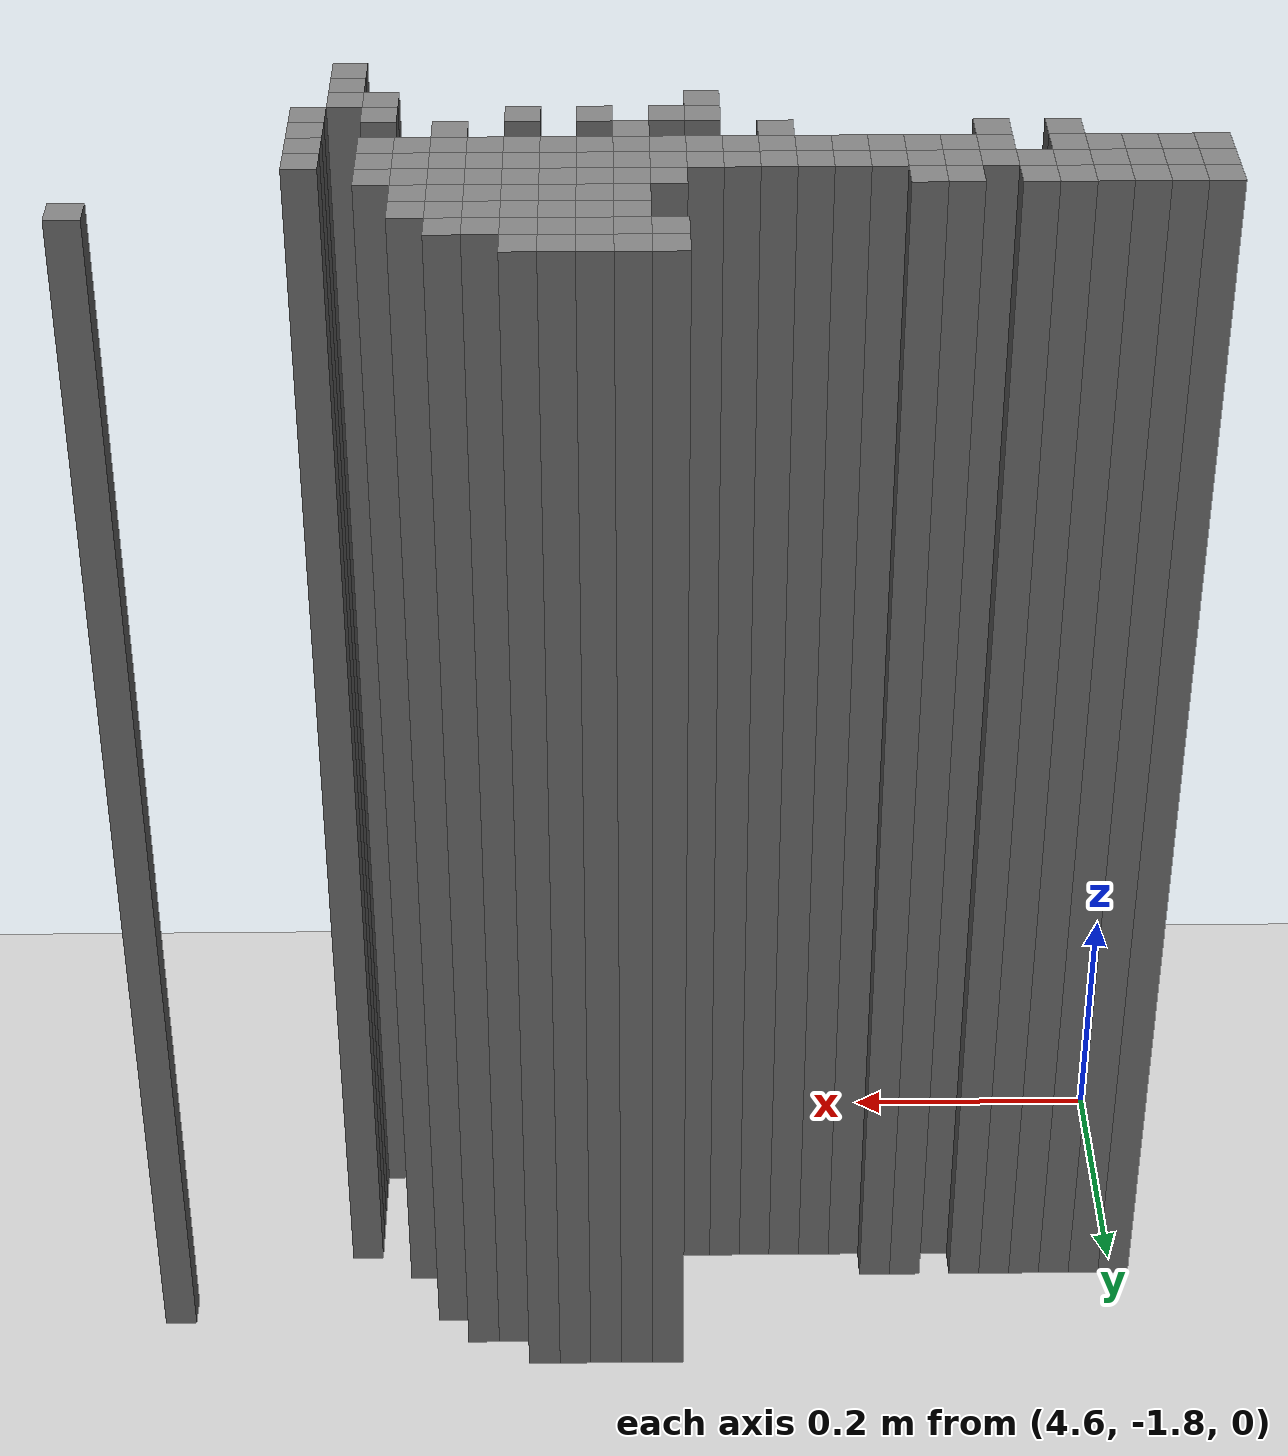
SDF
<sdf version="1.6">
 <world name="map_world">
  <include><uri>model://ground_plane</uri></include>
  <include><uri>model://sun</uri></include>
  <model name="obs_292_109">
   <static>true</static>
   <link name="link">
    <collision name="collision"><geometry><box><size>0.025 0.025 1.0</size></box></geometry></collision>
    <visual name="visual">
     <geometry><box><size>0.025 0.025 1.0</size></box></geometry>
     <material><ambient>0.5 0.5 0.5 1</ambient></material>
    </visual>
   </link>
   <pose>4.973765 -1.494071 0.5 0 0 0</pose>
  </model>
  <model name="obs_293_109">
   <static>true</static>
   <link name="link">
    <collision name="collision"><geometry><box><size>0.025 0.025 1.0</size></box></geometry></collision>
    <visual name="visual">
     <geometry><box><size>0.025 0.025 1.0</size></box></geometry>
     <material><ambient>0.5 0.5 0.5 1</ambient></material>
    </visual>
   </link>
   <pose>4.998765000000001 -1.494071 0.5 0 0 0</pose>
  </model>
  <model name="obs_294_109">
   <static>true</static>
   <link name="link">
    <collision name="collision"><geometry><box><size>0.025 0.025 1.0</size></box></geometry></collision>
    <visual name="visual">
     <geometry><box><size>0.025 0.025 1.0</size></box></geometry>
     <material><ambient>0.5 0.5 0.5 1</ambient></material>
    </visual>
   </link>
   <pose>5.023765000000001 -1.494071 0.5 0 0 0</pose>
  </model>
  <model name="obs_295_109">
   <static>true</static>
   <link name="link">
    <collision name="collision"><geometry><box><size>0.025 0.025 1.0</size></box></geometry></collision>
    <visual name="visual">
     <geometry><box><size>0.025 0.025 1.0</size></box></geometry>
     <material><ambient>0.5 0.5 0.5 1</ambient></material>
    </visual>
   </link>
   <pose>5.0487649999999995 -1.494071 0.5 0 0 0</pose>
  </model>
  <model name="obs_296_109">
   <static>true</static>
   <link name="link">
    <collision name="collision"><geometry><box><size>0.025 0.025 1.0</size></box></geometry></collision>
    <visual name="visual">
     <geometry><box><size>0.025 0.025 1.0</size></box></geometry>
     <material><ambient>0.5 0.5 0.5 1</ambient></material>
    </visual>
   </link>
   <pose>5.073765 -1.494071 0.5 0 0 0</pose>
  </model>
  <model name="obs_292_110">
   <static>true</static>
   <link name="link">
    <collision name="collision"><geometry><box><size>0.025 0.025 1.0</size></box></geometry></collision>
    <visual name="visual">
     <geometry><box><size>0.025 0.025 1.0</size></box></geometry>
     <material><ambient>0.5 0.5 0.5 1</ambient></material>
    </visual>
   </link>
   <pose>4.973765 -1.5190709999999998 0.5 0 0 0</pose>
  </model>
  <model name="obs_293_110">
   <static>true</static>
   <link name="link">
    <collision name="collision"><geometry><box><size>0.025 0.025 1.0</size></box></geometry></collision>
    <visual name="visual">
     <geometry><box><size>0.025 0.025 1.0</size></box></geometry>
     <material><ambient>0.5 0.5 0.5 1</ambient></material>
    </visual>
   </link>
   <pose>4.998765000000001 -1.5190709999999998 0.5 0 0 0</pose>
  </model>
  <model name="obs_294_110">
   <static>true</static>
   <link name="link">
    <collision name="collision"><geometry><box><size>0.025 0.025 1.0</size></box></geometry></collision>
    <visual name="visual">
     <geometry><box><size>0.025 0.025 1.0</size></box></geometry>
     <material><ambient>0.5 0.5 0.5 1</ambient></material>
    </visual>
   </link>
   <pose>5.023765000000001 -1.5190709999999998 0.5 0 0 0</pose>
  </model>
  <model name="obs_295_110">
   <static>true</static>
   <link name="link">
    <collision name="collision"><geometry><box><size>0.025 0.025 1.0</size></box></geometry></collision>
    <visual name="visual">
     <geometry><box><size>0.025 0.025 1.0</size></box></geometry>
     <material><ambient>0.5 0.5 0.5 1</ambient></material>
    </visual>
   </link>
   <pose>5.0487649999999995 -1.5190709999999998 0.5 0 0 0</pose>
  </model>
  <model name="obs_296_110">
   <static>true</static>
   <link name="link">
    <collision name="collision"><geometry><box><size>0.025 0.025 1.0</size></box></geometry></collision>
    <visual name="visual">
     <geometry><box><size>0.025 0.025 1.0</size></box></geometry>
     <material><ambient>0.5 0.5 0.5 1</ambient></material>
    </visual>
   </link>
   <pose>5.073765 -1.5190709999999998 0.5 0 0 0</pose>
  </model>
  <model name="obs_297_110">
   <static>true</static>
   <link name="link">
    <collision name="collision"><geometry><box><size>0.025 0.025 1.0</size></box></geometry></collision>
    <visual name="visual">
     <geometry><box><size>0.025 0.025 1.0</size></box></geometry>
     <material><ambient>0.5 0.5 0.5 1</ambient></material>
    </visual>
   </link>
   <pose>5.098765 -1.5190709999999998 0.5 0 0 0</pose>
  </model>
  <model name="obs_298_110">
   <static>true</static>
   <link name="link">
    <collision name="collision"><geometry><box><size>0.025 0.025 1.0</size></box></geometry></collision>
    <visual name="visual">
     <geometry><box><size>0.025 0.025 1.0</size></box></geometry>
     <material><ambient>0.5 0.5 0.5 1</ambient></material>
    </visual>
   </link>
   <pose>5.123765000000001 -1.5190709999999998 0.5 0 0 0</pose>
  </model>
  <model name="obs_293_111">
   <static>true</static>
   <link name="link">
    <collision name="collision"><geometry><box><size>0.025 0.025 1.0</size></box></geometry></collision>
    <visual name="visual">
     <geometry><box><size>0.025 0.025 1.0</size></box></geometry>
     <material><ambient>0.5 0.5 0.5 1</ambient></material>
    </visual>
   </link>
   <pose>4.998765000000001 -1.544071 0.5 0 0 0</pose>
  </model>
  <model name="obs_294_111">
   <static>true</static>
   <link name="link">
    <collision name="collision"><geometry><box><size>0.025 0.025 1.0</size></box></geometry></collision>
    <visual name="visual">
     <geometry><box><size>0.025 0.025 1.0</size></box></geometry>
     <material><ambient>0.5 0.5 0.5 1</ambient></material>
    </visual>
   </link>
   <pose>5.023765000000001 -1.544071 0.5 0 0 0</pose>
  </model>
  <model name="obs_295_111">
   <static>true</static>
   <link name="link">
    <collision name="collision"><geometry><box><size>0.025 0.025 1.0</size></box></geometry></collision>
    <visual name="visual">
     <geometry><box><size>0.025 0.025 1.0</size></box></geometry>
     <material><ambient>0.5 0.5 0.5 1</ambient></material>
    </visual>
   </link>
   <pose>5.0487649999999995 -1.544071 0.5 0 0 0</pose>
  </model>
  <model name="obs_296_111">
   <static>true</static>
   <link name="link">
    <collision name="collision"><geometry><box><size>0.025 0.025 1.0</size></box></geometry></collision>
    <visual name="visual">
     <geometry><box><size>0.025 0.025 1.0</size></box></geometry>
     <material><ambient>0.5 0.5 0.5 1</ambient></material>
    </visual>
   </link>
   <pose>5.073765 -1.544071 0.5 0 0 0</pose>
  </model>
  <model name="obs_297_111">
   <static>true</static>
   <link name="link">
    <collision name="collision"><geometry><box><size>0.025 0.025 1.0</size></box></geometry></collision>
    <visual name="visual">
     <geometry><box><size>0.025 0.025 1.0</size></box></geometry>
     <material><ambient>0.5 0.5 0.5 1</ambient></material>
    </visual>
   </link>
   <pose>5.098765 -1.544071 0.5 0 0 0</pose>
  </model>
  <model name="obs_298_111">
   <static>true</static>
   <link name="link">
    <collision name="collision"><geometry><box><size>0.025 0.025 1.0</size></box></geometry></collision>
    <visual name="visual">
     <geometry><box><size>0.025 0.025 1.0</size></box></geometry>
     <material><ambient>0.5 0.5 0.5 1</ambient></material>
    </visual>
   </link>
   <pose>5.123765000000001 -1.544071 0.5 0 0 0</pose>
  </model>
  <model name="obs_299_111">
   <static>true</static>
   <link name="link">
    <collision name="collision"><geometry><box><size>0.025 0.025 1.0</size></box></geometry></collision>
    <visual name="visual">
     <geometry><box><size>0.025 0.025 1.0</size></box></geometry>
     <material><ambient>0.5 0.5 0.5 1</ambient></material>
    </visual>
   </link>
   <pose>5.148765000000001 -1.544071 0.5 0 0 0</pose>
  </model>
  <model name="obs_308_111">
   <static>true</static>
   <link name="link">
    <collision name="collision"><geometry><box><size>0.025 0.025 1.0</size></box></geometry></collision>
    <visual name="visual">
     <geometry><box><size>0.025 0.025 1.0</size></box></geometry>
     <material><ambient>0.5 0.5 0.5 1</ambient></material>
    </visual>
   </link>
   <pose>5.373765000000001 -1.544071 0.5 0 0 0</pose>
  </model>
  <model name="obs_293_112">
   <static>true</static>
   <link name="link">
    <collision name="collision"><geometry><box><size>0.025 0.025 1.0</size></box></geometry></collision>
    <visual name="visual">
     <geometry><box><size>0.025 0.025 1.0</size></box></geometry>
     <material><ambient>0.5 0.5 0.5 1</ambient></material>
    </visual>
   </link>
   <pose>4.998765000000001 -1.5690709999999999 0.5 0 0 0</pose>
  </model>
  <model name="obs_294_112">
   <static>true</static>
   <link name="link">
    <collision name="collision"><geometry><box><size>0.025 0.025 1.0</size></box></geometry></collision>
    <visual name="visual">
     <geometry><box><size>0.025 0.025 1.0</size></box></geometry>
     <material><ambient>0.5 0.5 0.5 1</ambient></material>
    </visual>
   </link>
   <pose>5.023765000000001 -1.5690709999999999 0.5 0 0 0</pose>
  </model>
  <model name="obs_295_112">
   <static>true</static>
   <link name="link">
    <collision name="collision"><geometry><box><size>0.025 0.025 1.0</size></box></geometry></collision>
    <visual name="visual">
     <geometry><box><size>0.025 0.025 1.0</size></box></geometry>
     <material><ambient>0.5 0.5 0.5 1</ambient></material>
    </visual>
   </link>
   <pose>5.0487649999999995 -1.5690709999999999 0.5 0 0 0</pose>
  </model>
  <model name="obs_296_112">
   <static>true</static>
   <link name="link">
    <collision name="collision"><geometry><box><size>0.025 0.025 1.0</size></box></geometry></collision>
    <visual name="visual">
     <geometry><box><size>0.025 0.025 1.0</size></box></geometry>
     <material><ambient>0.5 0.5 0.5 1</ambient></material>
    </visual>
   </link>
   <pose>5.073765 -1.5690709999999999 0.5 0 0 0</pose>
  </model>
  <model name="obs_297_112">
   <static>true</static>
   <link name="link">
    <collision name="collision"><geometry><box><size>0.025 0.025 1.0</size></box></geometry></collision>
    <visual name="visual">
     <geometry><box><size>0.025 0.025 1.0</size></box></geometry>
     <material><ambient>0.5 0.5 0.5 1</ambient></material>
    </visual>
   </link>
   <pose>5.098765 -1.5690709999999999 0.5 0 0 0</pose>
  </model>
  <model name="obs_298_112">
   <static>true</static>
   <link name="link">
    <collision name="collision"><geometry><box><size>0.025 0.025 1.0</size></box></geometry></collision>
    <visual name="visual">
     <geometry><box><size>0.025 0.025 1.0</size></box></geometry>
     <material><ambient>0.5 0.5 0.5 1</ambient></material>
    </visual>
   </link>
   <pose>5.123765000000001 -1.5690709999999999 0.5 0 0 0</pose>
  </model>
  <model name="obs_299_112">
   <static>true</static>
   <link name="link">
    <collision name="collision"><geometry><box><size>0.025 0.025 1.0</size></box></geometry></collision>
    <visual name="visual">
     <geometry><box><size>0.025 0.025 1.0</size></box></geometry>
     <material><ambient>0.5 0.5 0.5 1</ambient></material>
    </visual>
   </link>
   <pose>5.148765000000001 -1.5690709999999999 0.5 0 0 0</pose>
  </model>
  <model name="obs_277_113">
   <static>true</static>
   <link name="link">
    <collision name="collision"><geometry><box><size>0.025 0.025 1.0</size></box></geometry></collision>
    <visual name="visual">
     <geometry><box><size>0.025 0.025 1.0</size></box></geometry>
     <material><ambient>0.5 0.5 0.5 1</ambient></material>
    </visual>
   </link>
   <pose>4.598765 -1.594071 0.5 0 0 0</pose>
  </model>
  <model name="obs_278_113">
   <static>true</static>
   <link name="link">
    <collision name="collision"><geometry><box><size>0.025 0.025 1.0</size></box></geometry></collision>
    <visual name="visual">
     <geometry><box><size>0.025 0.025 1.0</size></box></geometry>
     <material><ambient>0.5 0.5 0.5 1</ambient></material>
    </visual>
   </link>
   <pose>4.623765000000001 -1.594071 0.5 0 0 0</pose>
  </model>
  <model name="obs_279_113">
   <static>true</static>
   <link name="link">
    <collision name="collision"><geometry><box><size>0.025 0.025 1.0</size></box></geometry></collision>
    <visual name="visual">
     <geometry><box><size>0.025 0.025 1.0</size></box></geometry>
     <material><ambient>0.5 0.5 0.5 1</ambient></material>
    </visual>
   </link>
   <pose>4.648765000000001 -1.594071 0.5 0 0 0</pose>
  </model>
  <model name="obs_280_113">
   <static>true</static>
   <link name="link">
    <collision name="collision"><geometry><box><size>0.025 0.025 1.0</size></box></geometry></collision>
    <visual name="visual">
     <geometry><box><size>0.025 0.025 1.0</size></box></geometry>
     <material><ambient>0.5 0.5 0.5 1</ambient></material>
    </visual>
   </link>
   <pose>4.6737649999999995 -1.594071 0.5 0 0 0</pose>
  </model>
  <model name="obs_281_113">
   <static>true</static>
   <link name="link">
    <collision name="collision"><geometry><box><size>0.025 0.025 1.0</size></box></geometry></collision>
    <visual name="visual">
     <geometry><box><size>0.025 0.025 1.0</size></box></geometry>
     <material><ambient>0.5 0.5 0.5 1</ambient></material>
    </visual>
   </link>
   <pose>4.698765 -1.594071 0.5 0 0 0</pose>
  </model>
  <model name="obs_282_113">
   <static>true</static>
   <link name="link">
    <collision name="collision"><geometry><box><size>0.025 0.025 1.0</size></box></geometry></collision>
    <visual name="visual">
     <geometry><box><size>0.025 0.025 1.0</size></box></geometry>
     <material><ambient>0.5 0.5 0.5 1</ambient></material>
    </visual>
   </link>
   <pose>4.723765 -1.594071 0.5 0 0 0</pose>
  </model>
  <model name="obs_284_113">
   <static>true</static>
   <link name="link">
    <collision name="collision"><geometry><box><size>0.025 0.025 1.0</size></box></geometry></collision>
    <visual name="visual">
     <geometry><box><size>0.025 0.025 1.0</size></box></geometry>
     <material><ambient>0.5 0.5 0.5 1</ambient></material>
    </visual>
   </link>
   <pose>4.773765000000001 -1.594071 0.5 0 0 0</pose>
  </model>
  <model name="obs_285_113">
   <static>true</static>
   <link name="link">
    <collision name="collision"><geometry><box><size>0.025 0.025 1.0</size></box></geometry></collision>
    <visual name="visual">
     <geometry><box><size>0.025 0.025 1.0</size></box></geometry>
     <material><ambient>0.5 0.5 0.5 1</ambient></material>
    </visual>
   </link>
   <pose>4.7987649999999995 -1.594071 0.5 0 0 0</pose>
  </model>
  <model name="obs_292_113">
   <static>true</static>
   <link name="link">
    <collision name="collision"><geometry><box><size>0.025 0.025 1.0</size></box></geometry></collision>
    <visual name="visual">
     <geometry><box><size>0.025 0.025 1.0</size></box></geometry>
     <material><ambient>0.5 0.5 0.5 1</ambient></material>
    </visual>
   </link>
   <pose>4.973765 -1.594071 0.5 0 0 0</pose>
  </model>
  <model name="obs_293_113">
   <static>true</static>
   <link name="link">
    <collision name="collision"><geometry><box><size>0.025 0.025 1.0</size></box></geometry></collision>
    <visual name="visual">
     <geometry><box><size>0.025 0.025 1.0</size></box></geometry>
     <material><ambient>0.5 0.5 0.5 1</ambient></material>
    </visual>
   </link>
   <pose>4.998765000000001 -1.594071 0.5 0 0 0</pose>
  </model>
  <model name="obs_294_113">
   <static>true</static>
   <link name="link">
    <collision name="collision"><geometry><box><size>0.025 0.025 1.0</size></box></geometry></collision>
    <visual name="visual">
     <geometry><box><size>0.025 0.025 1.0</size></box></geometry>
     <material><ambient>0.5 0.5 0.5 1</ambient></material>
    </visual>
   </link>
   <pose>5.023765000000001 -1.594071 0.5 0 0 0</pose>
  </model>
  <model name="obs_295_113">
   <static>true</static>
   <link name="link">
    <collision name="collision"><geometry><box><size>0.025 0.025 1.0</size></box></geometry></collision>
    <visual name="visual">
     <geometry><box><size>0.025 0.025 1.0</size></box></geometry>
     <material><ambient>0.5 0.5 0.5 1</ambient></material>
    </visual>
   </link>
   <pose>5.0487649999999995 -1.594071 0.5 0 0 0</pose>
  </model>
  <model name="obs_296_113">
   <static>true</static>
   <link name="link">
    <collision name="collision"><geometry><box><size>0.025 0.025 1.0</size></box></geometry></collision>
    <visual name="visual">
     <geometry><box><size>0.025 0.025 1.0</size></box></geometry>
     <material><ambient>0.5 0.5 0.5 1</ambient></material>
    </visual>
   </link>
   <pose>5.073765 -1.594071 0.5 0 0 0</pose>
  </model>
  <model name="obs_297_113">
   <static>true</static>
   <link name="link">
    <collision name="collision"><geometry><box><size>0.025 0.025 1.0</size></box></geometry></collision>
    <visual name="visual">
     <geometry><box><size>0.025 0.025 1.0</size></box></geometry>
     <material><ambient>0.5 0.5 0.5 1</ambient></material>
    </visual>
   </link>
   <pose>5.098765 -1.594071 0.5 0 0 0</pose>
  </model>
  <model name="obs_298_113">
   <static>true</static>
   <link name="link">
    <collision name="collision"><geometry><box><size>0.025 0.025 1.0</size></box></geometry></collision>
    <visual name="visual">
     <geometry><box><size>0.025 0.025 1.0</size></box></geometry>
     <material><ambient>0.5 0.5 0.5 1</ambient></material>
    </visual>
   </link>
   <pose>5.123765000000001 -1.594071 0.5 0 0 0</pose>
  </model>
  <model name="obs_299_113">
   <static>true</static>
   <link name="link">
    <collision name="collision"><geometry><box><size>0.025 0.025 1.0</size></box></geometry></collision>
    <visual name="visual">
     <geometry><box><size>0.025 0.025 1.0</size></box></geometry>
     <material><ambient>0.5 0.5 0.5 1</ambient></material>
    </visual>
   </link>
   <pose>5.148765000000001 -1.594071 0.5 0 0 0</pose>
  </model>
  <model name="obs_300_113">
   <static>true</static>
   <link name="link">
    <collision name="collision"><geometry><box><size>0.025 0.025 1.0</size></box></geometry></collision>
    <visual name="visual">
     <geometry><box><size>0.025 0.025 1.0</size></box></geometry>
     <material><ambient>0.5 0.5 0.5 1</ambient></material>
    </visual>
   </link>
   <pose>5.1737649999999995 -1.594071 0.5 0 0 0</pose>
  </model>
  <model name="obs_277_114">
   <static>true</static>
   <link name="link">
    <collision name="collision"><geometry><box><size>0.025 0.025 1.0</size></box></geometry></collision>
    <visual name="visual">
     <geometry><box><size>0.025 0.025 1.0</size></box></geometry>
     <material><ambient>0.5 0.5 0.5 1</ambient></material>
    </visual>
   </link>
   <pose>4.598765 -1.619071 0.5 0 0 0</pose>
  </model>
  <model name="obs_278_114">
   <static>true</static>
   <link name="link">
    <collision name="collision"><geometry><box><size>0.025 0.025 1.0</size></box></geometry></collision>
    <visual name="visual">
     <geometry><box><size>0.025 0.025 1.0</size></box></geometry>
     <material><ambient>0.5 0.5 0.5 1</ambient></material>
    </visual>
   </link>
   <pose>4.623765000000001 -1.619071 0.5 0 0 0</pose>
  </model>
  <model name="obs_279_114">
   <static>true</static>
   <link name="link">
    <collision name="collision"><geometry><box><size>0.025 0.025 1.0</size></box></geometry></collision>
    <visual name="visual">
     <geometry><box><size>0.025 0.025 1.0</size></box></geometry>
     <material><ambient>0.5 0.5 0.5 1</ambient></material>
    </visual>
   </link>
   <pose>4.648765000000001 -1.619071 0.5 0 0 0</pose>
  </model>
  <model name="obs_280_114">
   <static>true</static>
   <link name="link">
    <collision name="collision"><geometry><box><size>0.025 0.025 1.0</size></box></geometry></collision>
    <visual name="visual">
     <geometry><box><size>0.025 0.025 1.0</size></box></geometry>
     <material><ambient>0.5 0.5 0.5 1</ambient></material>
    </visual>
   </link>
   <pose>4.6737649999999995 -1.619071 0.5 0 0 0</pose>
  </model>
  <model name="obs_281_114">
   <static>true</static>
   <link name="link">
    <collision name="collision"><geometry><box><size>0.025 0.025 1.0</size></box></geometry></collision>
    <visual name="visual">
     <geometry><box><size>0.025 0.025 1.0</size></box></geometry>
     <material><ambient>0.5 0.5 0.5 1</ambient></material>
    </visual>
   </link>
   <pose>4.698765 -1.619071 0.5 0 0 0</pose>
  </model>
  <model name="obs_282_114">
   <static>true</static>
   <link name="link">
    <collision name="collision"><geometry><box><size>0.025 0.025 1.0</size></box></geometry></collision>
    <visual name="visual">
     <geometry><box><size>0.025 0.025 1.0</size></box></geometry>
     <material><ambient>0.5 0.5 0.5 1</ambient></material>
    </visual>
   </link>
   <pose>4.723765 -1.619071 0.5 0 0 0</pose>
  </model>
  <model name="obs_283_114">
   <static>true</static>
   <link name="link">
    <collision name="collision"><geometry><box><size>0.025 0.025 1.0</size></box></geometry></collision>
    <visual name="visual">
     <geometry><box><size>0.025 0.025 1.0</size></box></geometry>
     <material><ambient>0.5 0.5 0.5 1</ambient></material>
    </visual>
   </link>
   <pose>4.748765000000001 -1.619071 0.5 0 0 0</pose>
  </model>
  <model name="obs_284_114">
   <static>true</static>
   <link name="link">
    <collision name="collision"><geometry><box><size>0.025 0.025 1.0</size></box></geometry></collision>
    <visual name="visual">
     <geometry><box><size>0.025 0.025 1.0</size></box></geometry>
     <material><ambient>0.5 0.5 0.5 1</ambient></material>
    </visual>
   </link>
   <pose>4.773765000000001 -1.619071 0.5 0 0 0</pose>
  </model>
  <model name="obs_285_114">
   <static>true</static>
   <link name="link">
    <collision name="collision"><geometry><box><size>0.025 0.025 1.0</size></box></geometry></collision>
    <visual name="visual">
     <geometry><box><size>0.025 0.025 1.0</size></box></geometry>
     <material><ambient>0.5 0.5 0.5 1</ambient></material>
    </visual>
   </link>
   <pose>4.7987649999999995 -1.619071 0.5 0 0 0</pose>
  </model>
  <model name="obs_286_114">
   <static>true</static>
   <link name="link">
    <collision name="collision"><geometry><box><size>0.025 0.025 1.0</size></box></geometry></collision>
    <visual name="visual">
     <geometry><box><size>0.025 0.025 1.0</size></box></geometry>
     <material><ambient>0.5 0.5 0.5 1</ambient></material>
    </visual>
   </link>
   <pose>4.823765 -1.619071 0.5 0 0 0</pose>
  </model>
  <model name="obs_287_114">
   <static>true</static>
   <link name="link">
    <collision name="collision"><geometry><box><size>0.025 0.025 1.0</size></box></geometry></collision>
    <visual name="visual">
     <geometry><box><size>0.025 0.025 1.0</size></box></geometry>
     <material><ambient>0.5 0.5 0.5 1</ambient></material>
    </visual>
   </link>
   <pose>4.848765 -1.619071 0.5 0 0 0</pose>
  </model>
  <model name="obs_288_114">
   <static>true</static>
   <link name="link">
    <collision name="collision"><geometry><box><size>0.025 0.025 1.0</size></box></geometry></collision>
    <visual name="visual">
     <geometry><box><size>0.025 0.025 1.0</size></box></geometry>
     <material><ambient>0.5 0.5 0.5 1</ambient></material>
    </visual>
   </link>
   <pose>4.873765000000001 -1.619071 0.5 0 0 0</pose>
  </model>
  <model name="obs_289_114">
   <static>true</static>
   <link name="link">
    <collision name="collision"><geometry><box><size>0.025 0.025 1.0</size></box></geometry></collision>
    <visual name="visual">
     <geometry><box><size>0.025 0.025 1.0</size></box></geometry>
     <material><ambient>0.5 0.5 0.5 1</ambient></material>
    </visual>
   </link>
   <pose>4.898765000000001 -1.619071 0.5 0 0 0</pose>
  </model>
  <model name="obs_290_114">
   <static>true</static>
   <link name="link">
    <collision name="collision"><geometry><box><size>0.025 0.025 1.0</size></box></geometry></collision>
    <visual name="visual">
     <geometry><box><size>0.025 0.025 1.0</size></box></geometry>
     <material><ambient>0.5 0.5 0.5 1</ambient></material>
    </visual>
   </link>
   <pose>4.9237649999999995 -1.619071 0.5 0 0 0</pose>
  </model>
  <model name="obs_291_114">
   <static>true</static>
   <link name="link">
    <collision name="collision"><geometry><box><size>0.025 0.025 1.0</size></box></geometry></collision>
    <visual name="visual">
     <geometry><box><size>0.025 0.025 1.0</size></box></geometry>
     <material><ambient>0.5 0.5 0.5 1</ambient></material>
    </visual>
   </link>
   <pose>4.948765 -1.619071 0.5 0 0 0</pose>
  </model>
  <model name="obs_292_114">
   <static>true</static>
   <link name="link">
    <collision name="collision"><geometry><box><size>0.025 0.025 1.0</size></box></geometry></collision>
    <visual name="visual">
     <geometry><box><size>0.025 0.025 1.0</size></box></geometry>
     <material><ambient>0.5 0.5 0.5 1</ambient></material>
    </visual>
   </link>
   <pose>4.973765 -1.619071 0.5 0 0 0</pose>
  </model>
  <model name="obs_293_114">
   <static>true</static>
   <link name="link">
    <collision name="collision"><geometry><box><size>0.025 0.025 1.0</size></box></geometry></collision>
    <visual name="visual">
     <geometry><box><size>0.025 0.025 1.0</size></box></geometry>
     <material><ambient>0.5 0.5 0.5 1</ambient></material>
    </visual>
   </link>
   <pose>4.998765000000001 -1.619071 0.5 0 0 0</pose>
  </model>
  <model name="obs_294_114">
   <static>true</static>
   <link name="link">
    <collision name="collision"><geometry><box><size>0.025 0.025 1.0</size></box></geometry></collision>
    <visual name="visual">
     <geometry><box><size>0.025 0.025 1.0</size></box></geometry>
     <material><ambient>0.5 0.5 0.5 1</ambient></material>
    </visual>
   </link>
   <pose>5.023765000000001 -1.619071 0.5 0 0 0</pose>
  </model>
  <model name="obs_295_114">
   <static>true</static>
   <link name="link">
    <collision name="collision"><geometry><box><size>0.025 0.025 1.0</size></box></geometry></collision>
    <visual name="visual">
     <geometry><box><size>0.025 0.025 1.0</size></box></geometry>
     <material><ambient>0.5 0.5 0.5 1</ambient></material>
    </visual>
   </link>
   <pose>5.0487649999999995 -1.619071 0.5 0 0 0</pose>
  </model>
  <model name="obs_296_114">
   <static>true</static>
   <link name="link">
    <collision name="collision"><geometry><box><size>0.025 0.025 1.0</size></box></geometry></collision>
    <visual name="visual">
     <geometry><box><size>0.025 0.025 1.0</size></box></geometry>
     <material><ambient>0.5 0.5 0.5 1</ambient></material>
    </visual>
   </link>
   <pose>5.073765 -1.619071 0.5 0 0 0</pose>
  </model>
  <model name="obs_297_114">
   <static>true</static>
   <link name="link">
    <collision name="collision"><geometry><box><size>0.025 0.025 1.0</size></box></geometry></collision>
    <visual name="visual">
     <geometry><box><size>0.025 0.025 1.0</size></box></geometry>
     <material><ambient>0.5 0.5 0.5 1</ambient></material>
    </visual>
   </link>
   <pose>5.098765 -1.619071 0.5 0 0 0</pose>
  </model>
  <model name="obs_298_114">
   <static>true</static>
   <link name="link">
    <collision name="collision"><geometry><box><size>0.025 0.025 1.0</size></box></geometry></collision>
    <visual name="visual">
     <geometry><box><size>0.025 0.025 1.0</size></box></geometry>
     <material><ambient>0.5 0.5 0.5 1</ambient></material>
    </visual>
   </link>
   <pose>5.123765000000001 -1.619071 0.5 0 0 0</pose>
  </model>
  <model name="obs_299_114">
   <static>true</static>
   <link name="link">
    <collision name="collision"><geometry><box><size>0.025 0.025 1.0</size></box></geometry></collision>
    <visual name="visual">
     <geometry><box><size>0.025 0.025 1.0</size></box></geometry>
     <material><ambient>0.5 0.5 0.5 1</ambient></material>
    </visual>
   </link>
   <pose>5.148765000000001 -1.619071 0.5 0 0 0</pose>
  </model>
  <model name="obs_300_114">
   <static>true</static>
   <link name="link">
    <collision name="collision"><geometry><box><size>0.025 0.025 1.0</size></box></geometry></collision>
    <visual name="visual">
     <geometry><box><size>0.025 0.025 1.0</size></box></geometry>
     <material><ambient>0.5 0.5 0.5 1</ambient></material>
    </visual>
   </link>
   <pose>5.1737649999999995 -1.619071 0.5 0 0 0</pose>
  </model>
  <model name="obs_302_114">
   <static>true</static>
   <link name="link">
    <collision name="collision"><geometry><box><size>0.025 0.025 1.0</size></box></geometry></collision>
    <visual name="visual">
     <geometry><box><size>0.025 0.025 1.0</size></box></geometry>
     <material><ambient>0.5 0.5 0.5 1</ambient></material>
    </visual>
   </link>
   <pose>5.223765 -1.619071 0.5 0 0 0</pose>
  </model>
  <model name="obs_277_115">
   <static>true</static>
   <link name="link">
    <collision name="collision"><geometry><box><size>0.025 0.025 1.0</size></box></geometry></collision>
    <visual name="visual">
     <geometry><box><size>0.025 0.025 1.0</size></box></geometry>
     <material><ambient>0.5 0.5 0.5 1</ambient></material>
    </visual>
   </link>
   <pose>4.598765 -1.6440709999999998 0.5 0 0 0</pose>
  </model>
  <model name="obs_278_115">
   <static>true</static>
   <link name="link">
    <collision name="collision"><geometry><box><size>0.025 0.025 1.0</size></box></geometry></collision>
    <visual name="visual">
     <geometry><box><size>0.025 0.025 1.0</size></box></geometry>
     <material><ambient>0.5 0.5 0.5 1</ambient></material>
    </visual>
   </link>
   <pose>4.623765000000001 -1.6440709999999998 0.5 0 0 0</pose>
  </model>
  <model name="obs_279_115">
   <static>true</static>
   <link name="link">
    <collision name="collision"><geometry><box><size>0.025 0.025 1.0</size></box></geometry></collision>
    <visual name="visual">
     <geometry><box><size>0.025 0.025 1.0</size></box></geometry>
     <material><ambient>0.5 0.5 0.5 1</ambient></material>
    </visual>
   </link>
   <pose>4.648765000000001 -1.6440709999999998 0.5 0 0 0</pose>
  </model>
  <model name="obs_280_115">
   <static>true</static>
   <link name="link">
    <collision name="collision"><geometry><box><size>0.025 0.025 1.0</size></box></geometry></collision>
    <visual name="visual">
     <geometry><box><size>0.025 0.025 1.0</size></box></geometry>
     <material><ambient>0.5 0.5 0.5 1</ambient></material>
    </visual>
   </link>
   <pose>4.6737649999999995 -1.6440709999999998 0.5 0 0 0</pose>
  </model>
  <model name="obs_281_115">
   <static>true</static>
   <link name="link">
    <collision name="collision"><geometry><box><size>0.025 0.025 1.0</size></box></geometry></collision>
    <visual name="visual">
     <geometry><box><size>0.025 0.025 1.0</size></box></geometry>
     <material><ambient>0.5 0.5 0.5 1</ambient></material>
    </visual>
   </link>
   <pose>4.698765 -1.6440709999999998 0.5 0 0 0</pose>
  </model>
  <model name="obs_283_115">
   <static>true</static>
   <link name="link">
    <collision name="collision"><geometry><box><size>0.025 0.025 1.0</size></box></geometry></collision>
    <visual name="visual">
     <geometry><box><size>0.025 0.025 1.0</size></box></geometry>
     <material><ambient>0.5 0.5 0.5 1</ambient></material>
    </visual>
   </link>
   <pose>4.748765000000001 -1.6440709999999998 0.5 0 0 0</pose>
  </model>
  <model name="obs_284_115">
   <static>true</static>
   <link name="link">
    <collision name="collision"><geometry><box><size>0.025 0.025 1.0</size></box></geometry></collision>
    <visual name="visual">
     <geometry><box><size>0.025 0.025 1.0</size></box></geometry>
     <material><ambient>0.5 0.5 0.5 1</ambient></material>
    </visual>
   </link>
   <pose>4.773765000000001 -1.6440709999999998 0.5 0 0 0</pose>
  </model>
  <model name="obs_285_115">
   <static>true</static>
   <link name="link">
    <collision name="collision"><geometry><box><size>0.025 0.025 1.0</size></box></geometry></collision>
    <visual name="visual">
     <geometry><box><size>0.025 0.025 1.0</size></box></geometry>
     <material><ambient>0.5 0.5 0.5 1</ambient></material>
    </visual>
   </link>
   <pose>4.7987649999999995 -1.6440709999999998 0.5 0 0 0</pose>
  </model>
  <model name="obs_286_115">
   <static>true</static>
   <link name="link">
    <collision name="collision"><geometry><box><size>0.025 0.025 1.0</size></box></geometry></collision>
    <visual name="visual">
     <geometry><box><size>0.025 0.025 1.0</size></box></geometry>
     <material><ambient>0.5 0.5 0.5 1</ambient></material>
    </visual>
   </link>
   <pose>4.823765 -1.6440709999999998 0.5 0 0 0</pose>
  </model>
  <model name="obs_287_115">
   <static>true</static>
   <link name="link">
    <collision name="collision"><geometry><box><size>0.025 0.025 1.0</size></box></geometry></collision>
    <visual name="visual">
     <geometry><box><size>0.025 0.025 1.0</size></box></geometry>
     <material><ambient>0.5 0.5 0.5 1</ambient></material>
    </visual>
   </link>
   <pose>4.848765 -1.6440709999999998 0.5 0 0 0</pose>
  </model>
  <model name="obs_288_115">
   <static>true</static>
   <link name="link">
    <collision name="collision"><geometry><box><size>0.025 0.025 1.0</size></box></geometry></collision>
    <visual name="visual">
     <geometry><box><size>0.025 0.025 1.0</size></box></geometry>
     <material><ambient>0.5 0.5 0.5 1</ambient></material>
    </visual>
   </link>
   <pose>4.873765000000001 -1.6440709999999998 0.5 0 0 0</pose>
  </model>
  <model name="obs_289_115">
   <static>true</static>
   <link name="link">
    <collision name="collision"><geometry><box><size>0.025 0.025 1.0</size></box></geometry></collision>
    <visual name="visual">
     <geometry><box><size>0.025 0.025 1.0</size></box></geometry>
     <material><ambient>0.5 0.5 0.5 1</ambient></material>
    </visual>
   </link>
   <pose>4.898765000000001 -1.6440709999999998 0.5 0 0 0</pose>
  </model>
  <model name="obs_290_115">
   <static>true</static>
   <link name="link">
    <collision name="collision"><geometry><box><size>0.025 0.025 1.0</size></box></geometry></collision>
    <visual name="visual">
     <geometry><box><size>0.025 0.025 1.0</size></box></geometry>
     <material><ambient>0.5 0.5 0.5 1</ambient></material>
    </visual>
   </link>
   <pose>4.9237649999999995 -1.6440709999999998 0.5 0 0 0</pose>
  </model>
  <model name="obs_291_115">
   <static>true</static>
   <link name="link">
    <collision name="collision"><geometry><box><size>0.025 0.025 1.0</size></box></geometry></collision>
    <visual name="visual">
     <geometry><box><size>0.025 0.025 1.0</size></box></geometry>
     <material><ambient>0.5 0.5 0.5 1</ambient></material>
    </visual>
   </link>
   <pose>4.948765 -1.6440709999999998 0.5 0 0 0</pose>
  </model>
  <model name="obs_292_115">
   <static>true</static>
   <link name="link">
    <collision name="collision"><geometry><box><size>0.025 0.025 1.0</size></box></geometry></collision>
    <visual name="visual">
     <geometry><box><size>0.025 0.025 1.0</size></box></geometry>
     <material><ambient>0.5 0.5 0.5 1</ambient></material>
    </visual>
   </link>
   <pose>4.973765 -1.6440709999999998 0.5 0 0 0</pose>
  </model>
  <model name="obs_293_115">
   <static>true</static>
   <link name="link">
    <collision name="collision"><geometry><box><size>0.025 0.025 1.0</size></box></geometry></collision>
    <visual name="visual">
     <geometry><box><size>0.025 0.025 1.0</size></box></geometry>
     <material><ambient>0.5 0.5 0.5 1</ambient></material>
    </visual>
   </link>
   <pose>4.998765000000001 -1.6440709999999998 0.5 0 0 0</pose>
  </model>
  <model name="obs_294_115">
   <static>true</static>
   <link name="link">
    <collision name="collision"><geometry><box><size>0.025 0.025 1.0</size></box></geometry></collision>
    <visual name="visual">
     <geometry><box><size>0.025 0.025 1.0</size></box></geometry>
     <material><ambient>0.5 0.5 0.5 1</ambient></material>
    </visual>
   </link>
   <pose>5.023765000000001 -1.6440709999999998 0.5 0 0 0</pose>
  </model>
  <model name="obs_295_115">
   <static>true</static>
   <link name="link">
    <collision name="collision"><geometry><box><size>0.025 0.025 1.0</size></box></geometry></collision>
    <visual name="visual">
     <geometry><box><size>0.025 0.025 1.0</size></box></geometry>
     <material><ambient>0.5 0.5 0.5 1</ambient></material>
    </visual>
   </link>
   <pose>5.0487649999999995 -1.6440709999999998 0.5 0 0 0</pose>
  </model>
  <model name="obs_296_115">
   <static>true</static>
   <link name="link">
    <collision name="collision"><geometry><box><size>0.025 0.025 1.0</size></box></geometry></collision>
    <visual name="visual">
     <geometry><box><size>0.025 0.025 1.0</size></box></geometry>
     <material><ambient>0.5 0.5 0.5 1</ambient></material>
    </visual>
   </link>
   <pose>5.073765 -1.6440709999999998 0.5 0 0 0</pose>
  </model>
  <model name="obs_297_115">
   <static>true</static>
   <link name="link">
    <collision name="collision"><geometry><box><size>0.025 0.025 1.0</size></box></geometry></collision>
    <visual name="visual">
     <geometry><box><size>0.025 0.025 1.0</size></box></geometry>
     <material><ambient>0.5 0.5 0.5 1</ambient></material>
    </visual>
   </link>
   <pose>5.098765 -1.6440709999999998 0.5 0 0 0</pose>
  </model>
  <model name="obs_298_115">
   <static>true</static>
   <link name="link">
    <collision name="collision"><geometry><box><size>0.025 0.025 1.0</size></box></geometry></collision>
    <visual name="visual">
     <geometry><box><size>0.025 0.025 1.0</size></box></geometry>
     <material><ambient>0.5 0.5 0.5 1</ambient></material>
    </visual>
   </link>
   <pose>5.123765000000001 -1.6440709999999998 0.5 0 0 0</pose>
  </model>
  <model name="obs_299_115">
   <static>true</static>
   <link name="link">
    <collision name="collision"><geometry><box><size>0.025 0.025 1.0</size></box></geometry></collision>
    <visual name="visual">
     <geometry><box><size>0.025 0.025 1.0</size></box></geometry>
     <material><ambient>0.5 0.5 0.5 1</ambient></material>
    </visual>
   </link>
   <pose>5.148765000000001 -1.6440709999999998 0.5 0 0 0</pose>
  </model>
  <model name="obs_300_115">
   <static>true</static>
   <link name="link">
    <collision name="collision"><geometry><box><size>0.025 0.025 1.0</size></box></geometry></collision>
    <visual name="visual">
     <geometry><box><size>0.025 0.025 1.0</size></box></geometry>
     <material><ambient>0.5 0.5 0.5 1</ambient></material>
    </visual>
   </link>
   <pose>5.1737649999999995 -1.6440709999999998 0.5 0 0 0</pose>
  </model>
  <model name="obs_302_115">
   <static>true</static>
   <link name="link">
    <collision name="collision"><geometry><box><size>0.025 0.025 1.0</size></box></geometry></collision>
    <visual name="visual">
     <geometry><box><size>0.025 0.025 1.0</size></box></geometry>
     <material><ambient>0.5 0.5 0.5 1</ambient></material>
    </visual>
   </link>
   <pose>5.223765 -1.6440709999999998 0.5 0 0 0</pose>
  </model>
  <model name="obs_281_116">
   <static>true</static>
   <link name="link">
    <collision name="collision"><geometry><box><size>0.025 0.025 1.0</size></box></geometry></collision>
    <visual name="visual">
     <geometry><box><size>0.025 0.025 1.0</size></box></geometry>
     <material><ambient>0.5 0.5 0.5 1</ambient></material>
    </visual>
   </link>
   <pose>4.698765 -1.669071 0.5 0 0 0</pose>
  </model>
  <model name="obs_283_116">
   <static>true</static>
   <link name="link">
    <collision name="collision"><geometry><box><size>0.025 0.025 1.0</size></box></geometry></collision>
    <visual name="visual">
     <geometry><box><size>0.025 0.025 1.0</size></box></geometry>
     <material><ambient>0.5 0.5 0.5 1</ambient></material>
    </visual>
   </link>
   <pose>4.748765000000001 -1.669071 0.5 0 0 0</pose>
  </model>
  <model name="obs_289_116">
   <static>true</static>
   <link name="link">
    <collision name="collision"><geometry><box><size>0.025 0.025 1.0</size></box></geometry></collision>
    <visual name="visual">
     <geometry><box><size>0.025 0.025 1.0</size></box></geometry>
     <material><ambient>0.5 0.5 0.5 1</ambient></material>
    </visual>
   </link>
   <pose>4.898765000000001 -1.669071 0.5 0 0 0</pose>
  </model>
  <model name="obs_293_116">
   <static>true</static>
   <link name="link">
    <collision name="collision"><geometry><box><size>0.025 0.025 1.0</size></box></geometry></collision>
    <visual name="visual">
     <geometry><box><size>0.025 0.025 1.0</size></box></geometry>
     <material><ambient>0.5 0.5 0.5 1</ambient></material>
    </visual>
   </link>
   <pose>4.998765000000001 -1.669071 0.5 0 0 0</pose>
  </model>
  <model name="obs_298_116">
   <static>true</static>
   <link name="link">
    <collision name="collision"><geometry><box><size>0.025 0.025 1.0</size></box></geometry></collision>
    <visual name="visual">
     <geometry><box><size>0.025 0.025 1.0</size></box></geometry>
     <material><ambient>0.5 0.5 0.5 1</ambient></material>
    </visual>
   </link>
   <pose>5.123765000000001 -1.669071 0.5 0 0 0</pose>
  </model>
  <model name="obs_302_116">
   <static>true</static>
   <link name="link">
    <collision name="collision"><geometry><box><size>0.025 0.025 1.0</size></box></geometry></collision>
    <visual name="visual">
     <geometry><box><size>0.025 0.025 1.0</size></box></geometry>
     <material><ambient>0.5 0.5 0.5 1</ambient></material>
    </visual>
   </link>
   <pose>5.223765 -1.669071 0.5 0 0 0</pose>
  </model>
  <model name="obs_291_117">
   <static>true</static>
   <link name="link">
    <collision name="collision"><geometry><box><size>0.025 0.025 1.0</size></box></geometry></collision>
    <visual name="visual">
     <geometry><box><size>0.025 0.025 1.0</size></box></geometry>
     <material><ambient>0.5 0.5 0.5 1</ambient></material>
    </visual>
   </link>
   <pose>4.948765 -1.6940709999999999 0.5 0 0 0</pose>
  </model>
  <model name="obs_292_117">
   <static>true</static>
   <link name="link">
    <collision name="collision"><geometry><box><size>0.025 0.025 1.0</size></box></geometry></collision>
    <visual name="visual">
     <geometry><box><size>0.025 0.025 1.0</size></box></geometry>
     <material><ambient>0.5 0.5 0.5 1</ambient></material>
    </visual>
   </link>
   <pose>4.973765 -1.6940709999999999 0.5 0 0 0</pose>
  </model>
  <model name="obs_294_117">
   <static>true</static>
   <link name="link">
    <collision name="collision"><geometry><box><size>0.025 0.025 1.0</size></box></geometry></collision>
    <visual name="visual">
     <geometry><box><size>0.025 0.025 1.0</size></box></geometry>
     <material><ambient>0.5 0.5 0.5 1</ambient></material>
    </visual>
   </link>
   <pose>5.023765000000001 -1.6940709999999999 0.5 0 0 0</pose>
  </model>
  <model name="obs_296_117">
   <static>true</static>
   <link name="link">
    <collision name="collision"><geometry><box><size>0.025 0.025 1.0</size></box></geometry></collision>
    <visual name="visual">
     <geometry><box><size>0.025 0.025 1.0</size></box></geometry>
     <material><ambient>0.5 0.5 0.5 1</ambient></material>
    </visual>
   </link>
   <pose>5.073765 -1.6940709999999999 0.5 0 0 0</pose>
  </model>
  <model name="obs_300_117">
   <static>true</static>
   <link name="link">
    <collision name="collision"><geometry><box><size>0.025 0.025 1.0</size></box></geometry></collision>
    <visual name="visual">
     <geometry><box><size>0.025 0.025 1.0</size></box></geometry>
     <material><ambient>0.5 0.5 0.5 1</ambient></material>
    </visual>
   </link>
   <pose>5.1737649999999995 -1.6940709999999999 0.5 0 0 0</pose>
  </model>
  <model name="obs_302_117">
   <static>true</static>
   <link name="link">
    <collision name="collision"><geometry><box><size>0.025 0.025 1.0</size></box></geometry></collision>
    <visual name="visual">
     <geometry><box><size>0.025 0.025 1.0</size></box></geometry>
     <material><ambient>0.5 0.5 0.5 1</ambient></material>
    </visual>
   </link>
   <pose>5.223765 -1.6940709999999999 0.5 0 0 0</pose>
  </model>
  <model name="obs_291_118">
   <static>true</static>
   <link name="link">
    <collision name="collision"><geometry><box><size>0.025 0.025 1.0</size></box></geometry></collision>
    <visual name="visual">
     <geometry><box><size>0.025 0.025 1.0</size></box></geometry>
     <material><ambient>0.5 0.5 0.5 1</ambient></material>
    </visual>
   </link>
   <pose>4.948765 -1.719071 0.5 0 0 0</pose>
  </model>
  <model name="obs_300_118">
   <static>true</static>
   <link name="link">
    <collision name="collision"><geometry><box><size>0.025 0.025 1.0</size></box></geometry></collision>
    <visual name="visual">
     <geometry><box><size>0.025 0.025 1.0</size></box></geometry>
     <material><ambient>0.5 0.5 0.5 1</ambient></material>
    </visual>
   </link>
   <pose>5.1737649999999995 -1.719071 0.5 0 0 0</pose>
  </model>
  <model name="obs_301_118">
   <static>true</static>
   <link name="link">
    <collision name="collision"><geometry><box><size>0.025 0.025 1.0</size></box></geometry></collision>
    <visual name="visual">
     <geometry><box><size>0.025 0.025 1.0</size></box></geometry>
     <material><ambient>0.5 0.5 0.5 1</ambient></material>
    </visual>
   </link>
   <pose>5.198765 -1.719071 0.5 0 0 0</pose>
  </model>
  <model name="obs_301_119">
   <static>true</static>
   <link name="link">
    <collision name="collision"><geometry><box><size>0.025 0.025 1.0</size></box></geometry></collision>
    <visual name="visual">
     <geometry><box><size>0.025 0.025 1.0</size></box></geometry>
     <material><ambient>0.5 0.5 0.5 1</ambient></material>
    </visual>
   </link>
   <pose>5.198765 -1.744071 0.5 0 0 0</pose>
  </model>
  <model name="obs_301_120">
   <static>true</static>
   <link name="link">
    <collision name="collision"><geometry><box><size>0.025 0.025 1.0</size></box></geometry></collision>
    <visual name="visual">
     <geometry><box><size>0.025 0.025 1.0</size></box></geometry>
     <material><ambient>0.5 0.5 0.5 1</ambient></material>
    </visual>
   </link>
   <pose>5.198765 -1.7690709999999998 0.5 0 0 0</pose>
  </model>
 </world>
</sdf>
